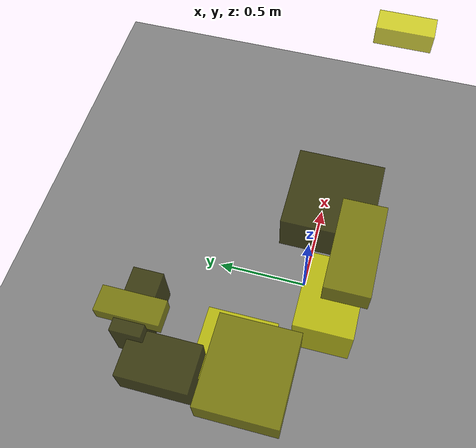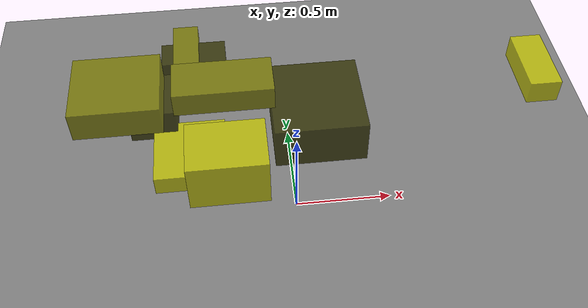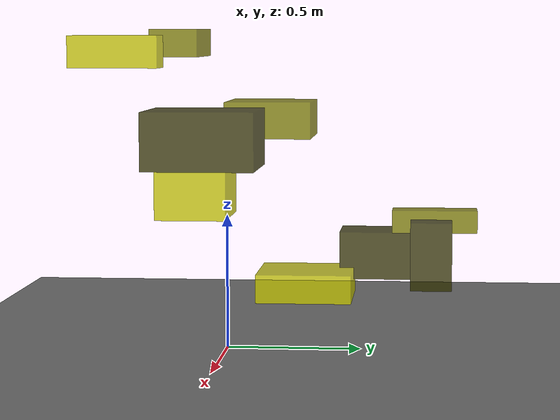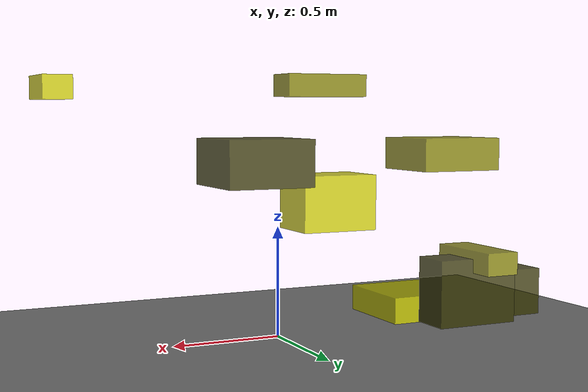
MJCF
<?xml version="1.0"?>
<mujoco model="obstacle_scene">
  <compiler angle="radian" coordinate="local"/>
  <option timestep="0.001" gravity="0 0 -9.81"/>

  <asset>
    <material name="obstacle_mat" rgba="0.8 0.8 0.0 0.8"/>
    <material name="ground_mat" rgba="0.5 0.5 0.5 1"/>
  </asset>

  <worldbody>
    <!-- Ground plane -->
    <geom name="ground" type="plane" size="3 3 0.1" material="ground_mat"/>

    <!-- Obstacles -->
    <body name="obstacle_0" pos="-0.724773 0.574545 0.270722">
      <geom name="obs_0" type="box" size="0.125258 0.187536 0.095160" rgba="0.2 0.2 0.0 0.8"/>
    </body>
    <body name="obstacle_1" pos="-0.320234 -0.220381 1.139503">
      <geom name="obs_1" type="box" size="0.201533 0.091933 0.052828" rgba="0.5 0.5 0.0 0.8"/>
    </body>
    <body name="obstacle_2" pos="-0.537711 0.256424 0.166562">
      <geom name="obs_2" type="box" size="0.190136 0.189740 0.055816" rgba="0.8 0.8 0.0 0.8"/>
    </body>
    <body name="obstacle_3" pos="-0.489349 0.760524 0.304659">
      <geom name="obs_3" type="box" size="0.173948 0.081167 0.132841" rgba="0.2 0.2 0.0 0.8"/>
    </body>
    <body name="obstacle_4" pos="-0.806502 0.089656 0.820349">
      <geom name="obs_4" type="box" size="0.199037 0.177304 0.074530" rgba="0.5 0.5 0.0 0.8"/>
    </body>
    <body name="obstacle_5" pos="-0.335543 -0.164710 0.589233">
      <geom name="obs_5" type="box" size="0.185385 0.137808 0.130563" rgba="0.8 0.8 0.0 0.8"/>
    </body>
    <body name="obstacle_6" pos="0.080587 -0.076900 0.789055">
      <geom name="obs_6" type="box" size="0.202429 0.205502 0.106980" rgba="0.2 0.2 0.0 0.8"/>
    </body>
    <body name="obstacle_7" pos="-0.527851 0.773939 0.427254">
      <geom name="obs_7" type="box" size="0.068366 0.169140 0.044256" rgba="0.5 0.5 0.0 0.8"/>
    </body>
    <body name="obstacle_8" pos="0.956611 -0.237206 1.120091">
      <geom name="obs_8" type="box" size="0.063212 0.142052 0.051075" rgba="0.8 0.8 0.0 0.8"/>
    </body>
  </worldbody>
</mujoco>
